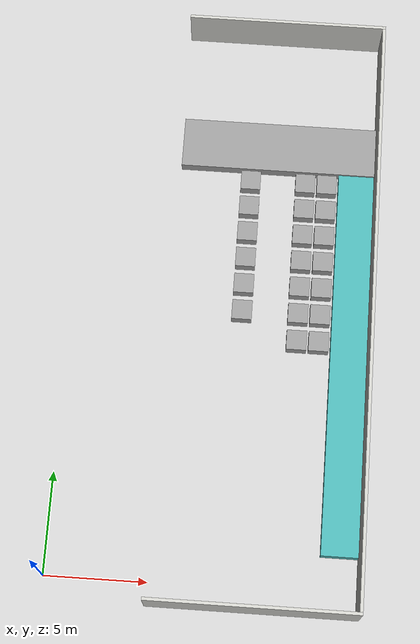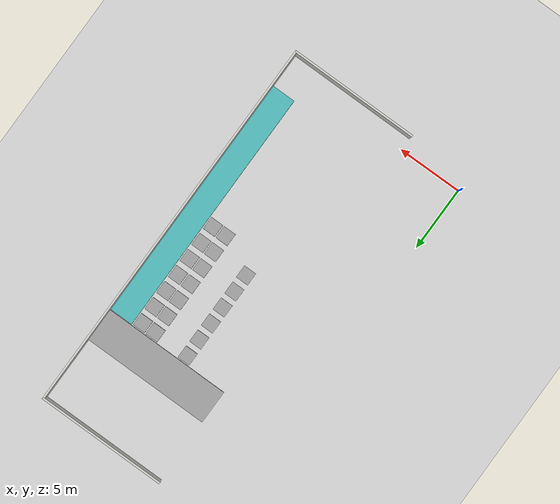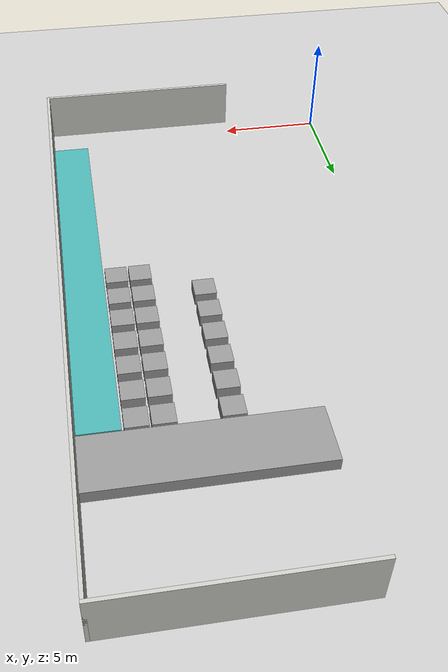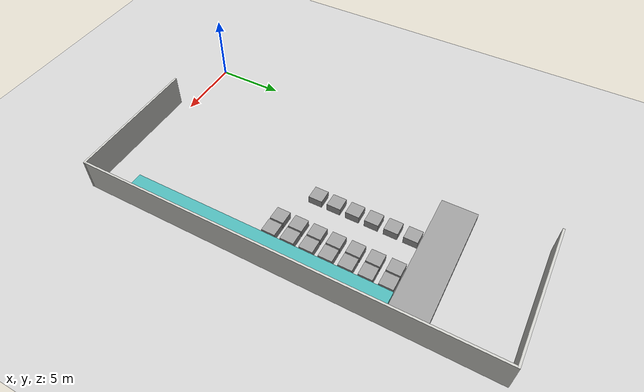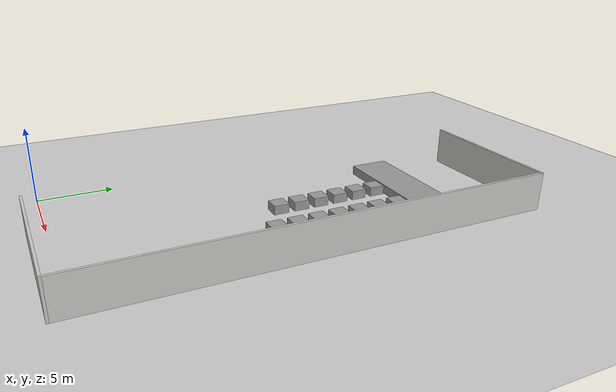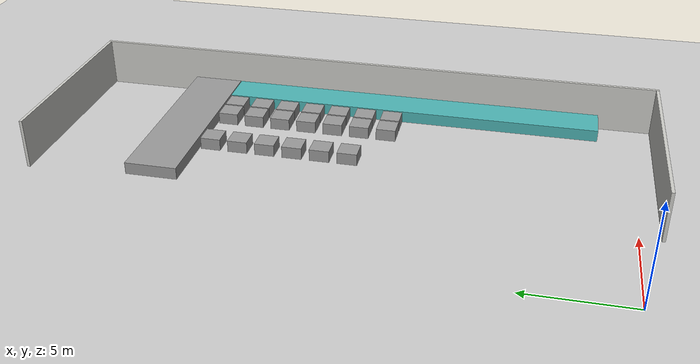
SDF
<sdf version="1.6">
 <world name="default">
  <model name="ground_plane">
   <static>1</static>
   <link name="link">
    <collision name="collision">
     <geometry><plane><normal>0 0 1</normal><size>100 100</size></plane></geometry>
     <surface>
      <contact><collide_bitmask>65535</collide_bitmask></contact>
      <friction><ode><mu>100</mu><mu2>50</mu2></ode></friction>
     </surface>
    </collision>
    <visual name="visual">
     <cast_shadows>0</cast_shadows>
     <geometry><plane><normal>0 0 1</normal><size>100 100</size></plane></geometry>
     <material>
      <script><uri>file://media/materials/scripts/gazebo.material</uri><name>Gazebo/Grey</name></script>
     </material>
    </visual>
   </link>
  </model>
  <model name="Estufa_2_0">
   <link name="Wall_1">
    <pose>0 15 0 0 -0 0</pose>
    <visual name="Wall_1_Visual">
     <pose>0 0 1.25 0 -0 0</pose>
     <geometry><box><size>10.15 0.15 2.5</size></box></geometry>
     <material>
      <script><uri>file://media/materials/scripts/gazebo.material</uri><name>Gazebo/CeilingTiled</name></script>
      <ambient>0.333333 0.341176 0.32549 1</ambient>
     </material>
     <meta><layer>0</layer></meta>
    </visual>
    <collision name="Wall_1_Collision">
     <pose>0 0 1.25 0 -0 0</pose>
     <geometry><box><size>10.15 0.15 2.5</size></box></geometry>
     <surface>
      <friction>
       <ode><mu>1</mu><mu2>1</mu2><fdir1>0 0 0</fdir1><slip1>0</slip1><slip2>0</slip2></ode>
       <torsional>
        <coefficient>1</coefficient>
        <patch_radius>0</patch_radius>
        <surface_radius>0</surface_radius>
        <use_patch_radius>1</use_patch_radius>
        <ode><slip>0</slip></ode>
       </torsional>
      </friction>
      <bounce><restitution_coefficient>0</restitution_coefficient><threshold>1e+06</threshold></bounce>
      <contact>
       <collide_without_contact>0</collide_without_contact>
       <collide_without_contact_bitmask>1</collide_without_contact_bitmask>
       <collide_bitmask>1</collide_bitmask>
       <ode>
        <soft_cfm>0</soft_cfm>
        <soft_erp>0.2</soft_erp>
        <kp>1e+13</kp>
        <kd>1</kd>
        <max_vel>0.01</max_vel>
        <min_depth>0</min_depth>
       </ode>
       <bullet>
        <split_impulse>1</split_impulse>
        <split_impulse_penetration_threshold>-0.01</split_impulse_penetration_threshold>
        <soft_cfm>0</soft_cfm>
        <soft_erp>0.2</soft_erp>
        <kp>1e+13</kp>
        <kd>1</kd>
       </bullet>
      </contact>
     </surface>
    </collision>
   </link>
   <link name="Wall_2">
    <pose>5 0 0 0 0 -1.5708</pose>
    <visual name="Wall_2_Visual">
     <pose>0 0 1.25 0 -0 0</pose>
     <geometry><box><size>30.15 0.15 2.5</size></box></geometry>
     <material>
      <script><uri>file://media/materials/scripts/gazebo.material</uri><name>Gazebo/CeilingTiled</name></script>
      <ambient>0.333333 0.341176 0.32549 1</ambient>
     </material>
     <meta><layer>0</layer></meta>
    </visual>
    <collision name="Wall_2_Collision">
     <pose>0 0 1.25 0 -0 0</pose>
     <geometry><box><size>30.15 0.15 2.5</size></box></geometry>
     <surface>
      <friction>
       <ode><mu>1</mu><mu2>1</mu2><fdir1>0 0 0</fdir1><slip1>0</slip1><slip2>0</slip2></ode>
       <torsional>
        <coefficient>1</coefficient>
        <patch_radius>0</patch_radius>
        <surface_radius>0</surface_radius>
        <use_patch_radius>1</use_patch_radius>
        <ode><slip>0</slip></ode>
       </torsional>
      </friction>
      <bounce><restitution_coefficient>0</restitution_coefficient><threshold>1e+06</threshold></bounce>
      <contact>
       <collide_without_contact>0</collide_without_contact>
       <collide_without_contact_bitmask>1</collide_without_contact_bitmask>
       <collide_bitmask>1</collide_bitmask>
       <ode>
        <soft_cfm>0</soft_cfm>
        <soft_erp>0.2</soft_erp>
        <kp>1e+13</kp>
        <kd>1</kd>
        <max_vel>0.01</max_vel>
        <min_depth>0</min_depth>
       </ode>
       <bullet>
        <split_impulse>1</split_impulse>
        <split_impulse_penetration_threshold>-0.01</split_impulse_penetration_threshold>
        <soft_cfm>0</soft_cfm>
        <soft_erp>0.2</soft_erp>
        <kp>1e+13</kp>
        <kd>1</kd>
       </bullet>
      </contact>
     </surface>
    </collision>
   </link>
   <link name="Wall_3">
    <pose>0 -15 0 0 -0 3.14159</pose>
    <visual name="Wall_3_Visual">
     <pose>0 0 1.25 0 -0 0</pose>
     <geometry><box><size>10.15 0.15 2.5</size></box></geometry>
     <material>
      <script><uri>file://media/materials/scripts/gazebo.material</uri><name>Gazebo/CeilingTiled</name></script>
      <ambient>0.333333 0.341176 0.32549 1</ambient>
     </material>
     <meta><layer>0</layer></meta>
    </visual>
    <collision name="Wall_3_Collision">
     <pose>0 0 1.25 0 -0 0</pose>
     <geometry><box><size>10.15 0.15 2.5</size></box></geometry>
     <surface>
      <friction>
       <ode><mu>1</mu><mu2>1</mu2><fdir1>0 0 0</fdir1><slip1>0</slip1><slip2>0</slip2></ode>
       <torsional>
        <coefficient>1</coefficient>
        <patch_radius>0</patch_radius>
        <surface_radius>0</surface_radius>
        <use_patch_radius>1</use_patch_radius>
        <ode><slip>0</slip></ode>
       </torsional>
      </friction>
      <bounce><restitution_coefficient>0</restitution_coefficient><threshold>1e+06</threshold></bounce>
      <contact>
       <collide_without_contact>0</collide_without_contact>
       <collide_without_contact_bitmask>1</collide_without_contact_bitmask>
       <collide_bitmask>1</collide_bitmask>
       <ode>
        <soft_cfm>0</soft_cfm>
        <soft_erp>0.2</soft_erp>
        <kp>1e+13</kp>
        <kd>1</kd>
        <max_vel>0.01</max_vel>
        <min_depth>0</min_depth>
       </ode>
       <bullet>
        <split_impulse>1</split_impulse>
        <split_impulse_penetration_threshold>-0.01</split_impulse_penetration_threshold>
        <soft_cfm>0</soft_cfm>
        <soft_erp>0.2</soft_erp>
        <kp>1e+13</kp>
        <kd>1</kd>
       </bullet>
      </contact>
     </surface>
    </collision>
   </link>
   <static>1</static>
   <pose>9.99599 13.9637 0 0 -0 0</pose>
  </model>
  <model name="Estufa-objetos_0">
   <link name="link_0_clone_3_clone_clone">
    <inertial>
     <mass>1</mass>
     <inertia>
      <ixx>0.166667</ixx>
      <ixy>0</ixy>
      <ixz>0</ixz>
      <iyy>0.166667</iyy>
      <iyz>0</iyz>
      <izz>0.166667</izz>
     </inertia>
    </inertial>
    <pose>4 6.5 0.5 0 -0 0</pose>
    <visual name="visual">
     <geometry><box><size>1.8 19.5 0.6</size></box></geometry>
     <material>
      <lighting>1</lighting>
      <script><uri>file://media/materials/scripts/gazebo.material</uri><name>Gazebo/Grey</name></script>
      <shader type="vertex"><normal_map>__default__</normal_map></shader>
      <ambient>0.3 0.7 0.7 1</ambient>
      <diffuse>0.7 0.7 0.7 1</diffuse>
      <specular>0.01 0.01 0.01 1</specular>
      <emissive>0 0 0 1</emissive>
     </material>
    </visual>
    <collision name="collision">
     <geometry><box><size>1.8 19.5 0.6</size></box></geometry>
     <surface>
      <friction>
       <ode><mu>1</mu><mu2>1</mu2><fdir1>0 0 0</fdir1><slip1>0</slip1><slip2>0</slip2></ode>
       <torsional>
        <coefficient>1</coefficient>
        <patch_radius>0</patch_radius>
        <surface_radius>0</surface_radius>
        <use_patch_radius>1</use_patch_radius>
        <ode><slip>0</slip></ode>
       </torsional>
      </friction>
      <bounce><restitution_coefficient>0</restitution_coefficient><threshold>1e+06</threshold></bounce>
      <contact>
       <collide_without_contact>0</collide_without_contact>
       <collide_without_contact_bitmask>1</collide_without_contact_bitmask>
       <collide_bitmask>1</collide_bitmask>
       <ode>
        <soft_cfm>0</soft_cfm>
        <soft_erp>0.2</soft_erp>
        <kp>1e+13</kp>
        <kd>1</kd>
        <max_vel>0.01</max_vel>
        <min_depth>0</min_depth>
       </ode>
       <bullet>
        <split_impulse>1</split_impulse>
        <split_impulse_penetration_threshold>-0.01</split_impulse_penetration_threshold>
        <soft_cfm>0</soft_cfm>
        <soft_erp>0.2</soft_erp>
        <kp>1e+13</kp>
        <kd>1</kd>
       </bullet>
      </contact>
     </surface>
    </collision>
   </link>
   <link name="link_0_clone_clone_24">
    <inertial>
     <mass>1</mass>
     <inertia>
      <ixx>0.166667</ixx>
      <ixy>0</ixy>
      <ixz>0</ixz>
      <iyy>0.166667</iyy>
      <iyz>0</iyz>
      <izz>0.166667</izz>
     </inertia>
    </inertial>
    <pose>2.5 7.3 0.5 0 -0 0</pose>
    <visual name="visual">
     <geometry><box><size>1 1 0.6</size></box></geometry>
     <material>
      <lighting>1</lighting>
      <script><uri>file://media/materials/scripts/gazebo.material</uri><name>Gazebo/Grey</name></script>
      <shader type="vertex"><normal_map>__default__</normal_map></shader>
      <ambient>0.3 0.3 0.3 1</ambient>
      <diffuse>0.7 0.7 0.7 1</diffuse>
      <specular>0.01 0.01 0.01 1</specular>
      <emissive>0 0 0 1</emissive>
     </material>
    </visual>
    <collision name="collision">
     <geometry><box><size>1 1 0.6</size></box></geometry>
     <surface>
      <friction>
       <ode><mu>1</mu><mu2>1</mu2><fdir1>0 0 0</fdir1><slip1>0</slip1><slip2>0</slip2></ode>
       <torsional>
        <coefficient>1</coefficient>
        <patch_radius>0</patch_radius>
        <surface_radius>0</surface_radius>
        <use_patch_radius>1</use_patch_radius>
        <ode><slip>0</slip></ode>
       </torsional>
      </friction>
      <bounce><restitution_coefficient>0</restitution_coefficient><threshold>1e+06</threshold></bounce>
      <contact>
       <collide_without_contact>0</collide_without_contact>
       <collide_without_contact_bitmask>1</collide_without_contact_bitmask>
       <collide_bitmask>1</collide_bitmask>
       <ode>
        <soft_cfm>0</soft_cfm>
        <soft_erp>0.2</soft_erp>
        <kp>1e+13</kp>
        <kd>1</kd>
        <max_vel>0.01</max_vel>
        <min_depth>0</min_depth>
       </ode>
       <bullet>
        <split_impulse>1</split_impulse>
        <split_impulse_penetration_threshold>-0.01</split_impulse_penetration_threshold>
        <soft_cfm>0</soft_cfm>
        <soft_erp>0.2</soft_erp>
        <kp>1e+13</kp>
        <kd>1</kd>
       </bullet>
      </contact>
     </surface>
    </collision>
   </link>
   <link name="link_0_clone_clone_25">
    <inertial>
     <mass>1</mass>
     <inertia>
      <ixx>0.166667</ixx>
      <ixy>0</ixy>
      <ixz>0</ixz>
      <iyy>0.166667</iyy>
      <iyz>0</iyz>
      <izz>0.166667</izz>
     </inertia>
    </inertial>
    <pose>1.4 7.3 0.5 0 -0 0</pose>
    <visual name="visual">
     <geometry><box><size>1 1 0.6</size></box></geometry>
     <material>
      <lighting>1</lighting>
      <script><uri>file://media/materials/scripts/gazebo.material</uri><name>Gazebo/Grey</name></script>
      <shader type="vertex"><normal_map>__default__</normal_map></shader>
      <ambient>0.3 0.3 0.3 1</ambient>
      <diffuse>0.7 0.7 0.7 1</diffuse>
      <specular>0.01 0.01 0.01 1</specular>
      <emissive>0 0 0 1</emissive>
     </material>
    </visual>
    <collision name="collision">
     <geometry><box><size>1 1 0.6</size></box></geometry>
     <surface>
      <friction>
       <ode><mu>1</mu><mu2>1</mu2><fdir1>0 0 0</fdir1><slip1>0</slip1><slip2>0</slip2></ode>
       <torsional>
        <coefficient>1</coefficient>
        <patch_radius>0</patch_radius>
        <surface_radius>0</surface_radius>
        <use_patch_radius>1</use_patch_radius>
        <ode><slip>0</slip></ode>
       </torsional>
      </friction>
      <bounce><restitution_coefficient>0</restitution_coefficient><threshold>1e+06</threshold></bounce>
      <contact>
       <collide_without_contact>0</collide_without_contact>
       <collide_without_contact_bitmask>1</collide_without_contact_bitmask>
       <collide_bitmask>1</collide_bitmask>
       <ode>
        <soft_cfm>0</soft_cfm>
        <soft_erp>0.2</soft_erp>
        <kp>1e+13</kp>
        <kd>1</kd>
        <max_vel>0.01</max_vel>
        <min_depth>0</min_depth>
       </ode>
       <bullet>
        <split_impulse>1</split_impulse>
        <split_impulse_penetration_threshold>-0.01</split_impulse_penetration_threshold>
        <soft_cfm>0</soft_cfm>
        <soft_erp>0.2</soft_erp>
        <kp>1e+13</kp>
        <kd>1</kd>
       </bullet>
      </contact>
     </surface>
    </collision>
   </link>
   <link name="link_0_clone_clone_28">
    <inertial>
     <mass>1</mass>
     <inertia>
      <ixx>0.166667</ixx>
      <ixy>0</ixy>
      <ixz>0</ixz>
      <iyy>0.166667</iyy>
      <iyz>0</iyz>
      <izz>0.166667</izz>
     </inertia>
    </inertial>
    <pose>2.5 8.7 0.5 0 -0 0</pose>
    <visual name="visual">
     <geometry><box><size>1 1 0.6</size></box></geometry>
     <material>
      <lighting>1</lighting>
      <script><uri>file://media/materials/scripts/gazebo.material</uri><name>Gazebo/Grey</name></script>
      <shader type="vertex"><normal_map>__default__</normal_map></shader>
      <ambient>0.3 0.3 0.3 1</ambient>
      <diffuse>0.7 0.7 0.7 1</diffuse>
      <specular>0.01 0.01 0.01 1</specular>
      <emissive>0 0 0 1</emissive>
     </material>
    </visual>
    <collision name="collision">
     <geometry><box><size>1 1 0.6</size></box></geometry>
     <surface>
      <friction>
       <ode><mu>1</mu><mu2>1</mu2><fdir1>0 0 0</fdir1><slip1>0</slip1><slip2>0</slip2></ode>
       <torsional>
        <coefficient>1</coefficient>
        <patch_radius>0</patch_radius>
        <surface_radius>0</surface_radius>
        <use_patch_radius>1</use_patch_radius>
        <ode><slip>0</slip></ode>
       </torsional>
      </friction>
      <bounce><restitution_coefficient>0</restitution_coefficient><threshold>1e+06</threshold></bounce>
      <contact>
       <collide_without_contact>0</collide_without_contact>
       <collide_without_contact_bitmask>1</collide_without_contact_bitmask>
       <collide_bitmask>1</collide_bitmask>
       <ode>
        <soft_cfm>0</soft_cfm>
        <soft_erp>0.2</soft_erp>
        <kp>1e+13</kp>
        <kd>1</kd>
        <max_vel>0.01</max_vel>
        <min_depth>0</min_depth>
       </ode>
       <bullet>
        <split_impulse>1</split_impulse>
        <split_impulse_penetration_threshold>-0.01</split_impulse_penetration_threshold>
        <soft_cfm>0</soft_cfm>
        <soft_erp>0.2</soft_erp>
        <kp>1e+13</kp>
        <kd>1</kd>
       </bullet>
      </contact>
     </surface>
    </collision>
   </link>
   <link name="link_0_clone_clone_29">
    <inertial>
     <mass>1</mass>
     <inertia>
      <ixx>0.166667</ixx>
      <ixy>0</ixy>
      <ixz>0</ixz>
      <iyy>0.166667</iyy>
      <iyz>0</iyz>
      <izz>0.166667</izz>
     </inertia>
    </inertial>
    <pose>1.4 8.7 0.5 0 -0 0</pose>
    <visual name="visual">
     <geometry><box><size>1 1 0.6</size></box></geometry>
     <material>
      <lighting>1</lighting>
      <script><uri>file://media/materials/scripts/gazebo.material</uri><name>Gazebo/Grey</name></script>
      <shader type="vertex"><normal_map>__default__</normal_map></shader>
      <ambient>0.3 0.3 0.3 1</ambient>
      <diffuse>0.7 0.7 0.7 1</diffuse>
      <specular>0.01 0.01 0.01 1</specular>
      <emissive>0 0 0 1</emissive>
     </material>
    </visual>
    <collision name="collision">
     <geometry><box><size>1 1 0.6</size></box></geometry>
     <surface>
      <friction>
       <ode><mu>1</mu><mu2>1</mu2><fdir1>0 0 0</fdir1><slip1>0</slip1><slip2>0</slip2></ode>
       <torsional>
        <coefficient>1</coefficient>
        <patch_radius>0</patch_radius>
        <surface_radius>0</surface_radius>
        <use_patch_radius>1</use_patch_radius>
        <ode><slip>0</slip></ode>
       </torsional>
      </friction>
      <bounce><restitution_coefficient>0</restitution_coefficient><threshold>1e+06</threshold></bounce>
      <contact>
       <collide_without_contact>0</collide_without_contact>
       <collide_without_contact_bitmask>1</collide_without_contact_bitmask>
       <collide_bitmask>1</collide_bitmask>
       <ode>
        <soft_cfm>0</soft_cfm>
        <soft_erp>0.2</soft_erp>
        <kp>1e+13</kp>
        <kd>1</kd>
        <max_vel>0.01</max_vel>
        <min_depth>0</min_depth>
       </ode>
       <bullet>
        <split_impulse>1</split_impulse>
        <split_impulse_penetration_threshold>-0.01</split_impulse_penetration_threshold>
        <soft_cfm>0</soft_cfm>
        <soft_erp>0.2</soft_erp>
        <kp>1e+13</kp>
        <kd>1</kd>
       </bullet>
      </contact>
     </surface>
    </collision>
   </link>
   <link name="link_0_clone_clone_30">
    <inertial>
     <mass>1</mass>
     <inertia>
      <ixx>0.166667</ixx>
      <ixy>0</ixy>
      <ixz>0</ixz>
      <iyy>0.166667</iyy>
      <iyz>0</iyz>
      <izz>0.166667</izz>
     </inertia>
    </inertial>
    <pose>-1.4 8.7 0.5 0 -0 0</pose>
    <visual name="visual">
     <geometry><box><size>1 1 0.6</size></box></geometry>
     <material>
      <lighting>1</lighting>
      <script><uri>file://media/materials/scripts/gazebo.material</uri><name>Gazebo/Grey</name></script>
      <shader type="vertex"><normal_map>__default__</normal_map></shader>
      <ambient>0.3 0.3 0.3 1</ambient>
      <diffuse>0.7 0.7 0.7 1</diffuse>
      <specular>0.01 0.01 0.01 1</specular>
      <emissive>0 0 0 1</emissive>
     </material>
    </visual>
    <collision name="collision">
     <geometry><box><size>1 1 0.6</size></box></geometry>
     <surface>
      <friction>
       <ode><mu>1</mu><mu2>1</mu2><fdir1>0 0 0</fdir1><slip1>0</slip1><slip2>0</slip2></ode>
       <torsional>
        <coefficient>1</coefficient>
        <patch_radius>0</patch_radius>
        <surface_radius>0</surface_radius>
        <use_patch_radius>1</use_patch_radius>
        <ode><slip>0</slip></ode>
       </torsional>
      </friction>
      <bounce><restitution_coefficient>0</restitution_coefficient><threshold>1e+06</threshold></bounce>
      <contact>
       <collide_without_contact>0</collide_without_contact>
       <collide_without_contact_bitmask>1</collide_without_contact_bitmask>
       <collide_bitmask>1</collide_bitmask>
       <ode>
        <soft_cfm>0</soft_cfm>
        <soft_erp>0.2</soft_erp>
        <kp>1e+13</kp>
        <kd>1</kd>
        <max_vel>0.01</max_vel>
        <min_depth>0</min_depth>
       </ode>
       <bullet>
        <split_impulse>1</split_impulse>
        <split_impulse_penetration_threshold>-0.01</split_impulse_penetration_threshold>
        <soft_cfm>0</soft_cfm>
        <soft_erp>0.2</soft_erp>
        <kp>1e+13</kp>
        <kd>1</kd>
       </bullet>
      </contact>
     </surface>
    </collision>
   </link>
   <link name="link_0_clone_clone_32">
    <inertial>
     <mass>1</mass>
     <inertia>
      <ixx>0.166667</ixx>
      <ixy>0</ixy>
      <ixz>0</ixz>
      <iyy>0.166667</iyy>
      <iyz>0</iyz>
      <izz>0.166667</izz>
     </inertia>
    </inertial>
    <pose>2.5 10.1 0.5 0 -0 0</pose>
    <visual name="visual">
     <geometry><box><size>1 1 0.6</size></box></geometry>
     <material>
      <lighting>1</lighting>
      <script><uri>file://media/materials/scripts/gazebo.material</uri><name>Gazebo/Grey</name></script>
      <shader type="vertex"><normal_map>__default__</normal_map></shader>
      <ambient>0.3 0.3 0.3 1</ambient>
      <diffuse>0.7 0.7 0.7 1</diffuse>
      <specular>0.01 0.01 0.01 1</specular>
      <emissive>0 0 0 1</emissive>
     </material>
    </visual>
    <collision name="collision">
     <geometry><box><size>1 1 0.6</size></box></geometry>
     <surface>
      <friction>
       <ode><mu>1</mu><mu2>1</mu2><fdir1>0 0 0</fdir1><slip1>0</slip1><slip2>0</slip2></ode>
       <torsional>
        <coefficient>1</coefficient>
        <patch_radius>0</patch_radius>
        <surface_radius>0</surface_radius>
        <use_patch_radius>1</use_patch_radius>
        <ode><slip>0</slip></ode>
       </torsional>
      </friction>
      <bounce><restitution_coefficient>0</restitution_coefficient><threshold>1e+06</threshold></bounce>
      <contact>
       <collide_without_contact>0</collide_without_contact>
       <collide_without_contact_bitmask>1</collide_without_contact_bitmask>
       <collide_bitmask>1</collide_bitmask>
       <ode>
        <soft_cfm>0</soft_cfm>
        <soft_erp>0.2</soft_erp>
        <kp>1e+13</kp>
        <kd>1</kd>
        <max_vel>0.01</max_vel>
        <min_depth>0</min_depth>
       </ode>
       <bullet>
        <split_impulse>1</split_impulse>
        <split_impulse_penetration_threshold>-0.01</split_impulse_penetration_threshold>
        <soft_cfm>0</soft_cfm>
        <soft_erp>0.2</soft_erp>
        <kp>1e+13</kp>
        <kd>1</kd>
       </bullet>
      </contact>
     </surface>
    </collision>
   </link>
   <link name="link_0_clone_clone_33">
    <inertial>
     <mass>1</mass>
     <inertia>
      <ixx>0.166667</ixx>
      <ixy>0</ixy>
      <ixz>0</ixz>
      <iyy>0.166667</iyy>
      <iyz>0</iyz>
      <izz>0.166667</izz>
     </inertia>
    </inertial>
    <pose>1.4 10.1 0.5 0 -0 0</pose>
    <visual name="visual">
     <geometry><box><size>1 1 0.6</size></box></geometry>
     <material>
      <lighting>1</lighting>
      <script><uri>file://media/materials/scripts/gazebo.material</uri><name>Gazebo/Grey</name></script>
      <shader type="vertex"><normal_map>__default__</normal_map></shader>
      <ambient>0.3 0.3 0.3 1</ambient>
      <diffuse>0.7 0.7 0.7 1</diffuse>
      <specular>0.01 0.01 0.01 1</specular>
      <emissive>0 0 0 1</emissive>
     </material>
    </visual>
    <collision name="collision">
     <geometry><box><size>1 1 0.6</size></box></geometry>
     <surface>
      <friction>
       <ode><mu>1</mu><mu2>1</mu2><fdir1>0 0 0</fdir1><slip1>0</slip1><slip2>0</slip2></ode>
       <torsional>
        <coefficient>1</coefficient>
        <patch_radius>0</patch_radius>
        <surface_radius>0</surface_radius>
        <use_patch_radius>1</use_patch_radius>
        <ode><slip>0</slip></ode>
       </torsional>
      </friction>
      <bounce><restitution_coefficient>0</restitution_coefficient><threshold>1e+06</threshold></bounce>
      <contact>
       <collide_without_contact>0</collide_without_contact>
       <collide_without_contact_bitmask>1</collide_without_contact_bitmask>
       <collide_bitmask>1</collide_bitmask>
       <ode>
        <soft_cfm>0</soft_cfm>
        <soft_erp>0.2</soft_erp>
        <kp>1e+13</kp>
        <kd>1</kd>
        <max_vel>0.01</max_vel>
        <min_depth>0</min_depth>
       </ode>
       <bullet>
        <split_impulse>1</split_impulse>
        <split_impulse_penetration_threshold>-0.01</split_impulse_penetration_threshold>
        <soft_cfm>0</soft_cfm>
        <soft_erp>0.2</soft_erp>
        <kp>1e+13</kp>
        <kd>1</kd>
       </bullet>
      </contact>
     </surface>
    </collision>
   </link>
   <link name="link_0_clone_clone_34">
    <inertial>
     <mass>1</mass>
     <inertia>
      <ixx>0.166667</ixx>
      <ixy>0</ixy>
      <ixz>0</ixz>
      <iyy>0.166667</iyy>
      <iyz>0</iyz>
      <izz>0.166667</izz>
     </inertia>
    </inertial>
    <pose>-1.4 10.1 0.5 0 -0 0</pose>
    <visual name="visual">
     <geometry><box><size>1 1 0.6</size></box></geometry>
     <material>
      <lighting>1</lighting>
      <script><uri>file://media/materials/scripts/gazebo.material</uri><name>Gazebo/Grey</name></script>
      <shader type="vertex"><normal_map>__default__</normal_map></shader>
      <ambient>0.3 0.3 0.3 1</ambient>
      <diffuse>0.7 0.7 0.7 1</diffuse>
      <specular>0.01 0.01 0.01 1</specular>
      <emissive>0 0 0 1</emissive>
     </material>
    </visual>
    <collision name="collision">
     <geometry><box><size>1 1 0.6</size></box></geometry>
     <surface>
      <friction>
       <ode><mu>1</mu><mu2>1</mu2><fdir1>0 0 0</fdir1><slip1>0</slip1><slip2>0</slip2></ode>
       <torsional>
        <coefficient>1</coefficient>
        <patch_radius>0</patch_radius>
        <surface_radius>0</surface_radius>
        <use_patch_radius>1</use_patch_radius>
        <ode><slip>0</slip></ode>
       </torsional>
      </friction>
      <bounce><restitution_coefficient>0</restitution_coefficient><threshold>1e+06</threshold></bounce>
      <contact>
       <collide_without_contact>0</collide_without_contact>
       <collide_without_contact_bitmask>1</collide_without_contact_bitmask>
       <collide_bitmask>1</collide_bitmask>
       <ode>
        <soft_cfm>0</soft_cfm>
        <soft_erp>0.2</soft_erp>
        <kp>1e+13</kp>
        <kd>1</kd>
        <max_vel>0.01</max_vel>
        <min_depth>0</min_depth>
       </ode>
       <bullet>
        <split_impulse>1</split_impulse>
        <split_impulse_penetration_threshold>-0.01</split_impulse_penetration_threshold>
        <soft_cfm>0</soft_cfm>
        <soft_erp>0.2</soft_erp>
        <kp>1e+13</kp>
        <kd>1</kd>
       </bullet>
      </contact>
     </surface>
    </collision>
   </link>
   <link name="link_0_clone_clone_36">
    <inertial>
     <mass>1</mass>
     <inertia>
      <ixx>0.166667</ixx>
      <ixy>0</ixy>
      <ixz>0</ixz>
      <iyy>0.166667</iyy>
      <iyz>0</iyz>
      <izz>0.166667</izz>
     </inertia>
    </inertial>
    <pose>2.5 11.5 0.5 0 -0 0</pose>
    <visual name="visual">
     <geometry><box><size>1 1 0.6</size></box></geometry>
     <material>
      <lighting>1</lighting>
      <script><uri>file://media/materials/scripts/gazebo.material</uri><name>Gazebo/Grey</name></script>
      <shader type="vertex"><normal_map>__default__</normal_map></shader>
      <ambient>0.3 0.3 0.3 1</ambient>
      <diffuse>0.7 0.7 0.7 1</diffuse>
      <specular>0.01 0.01 0.01 1</specular>
      <emissive>0 0 0 1</emissive>
     </material>
    </visual>
    <collision name="collision">
     <geometry><box><size>1 1 0.6</size></box></geometry>
     <surface>
      <friction>
       <ode><mu>1</mu><mu2>1</mu2><fdir1>0 0 0</fdir1><slip1>0</slip1><slip2>0</slip2></ode>
       <torsional>
        <coefficient>1</coefficient>
        <patch_radius>0</patch_radius>
        <surface_radius>0</surface_radius>
        <use_patch_radius>1</use_patch_radius>
        <ode><slip>0</slip></ode>
       </torsional>
      </friction>
      <bounce><restitution_coefficient>0</restitution_coefficient><threshold>1e+06</threshold></bounce>
      <contact>
       <collide_without_contact>0</collide_without_contact>
       <collide_without_contact_bitmask>1</collide_without_contact_bitmask>
       <collide_bitmask>1</collide_bitmask>
       <ode>
        <soft_cfm>0</soft_cfm>
        <soft_erp>0.2</soft_erp>
        <kp>1e+13</kp>
        <kd>1</kd>
        <max_vel>0.01</max_vel>
        <min_depth>0</min_depth>
       </ode>
       <bullet>
        <split_impulse>1</split_impulse>
        <split_impulse_penetration_threshold>-0.01</split_impulse_penetration_threshold>
        <soft_cfm>0</soft_cfm>
        <soft_erp>0.2</soft_erp>
        <kp>1e+13</kp>
        <kd>1</kd>
       </bullet>
      </contact>
     </surface>
    </collision>
   </link>
   <link name="link_0_clone_clone_37">
    <inertial>
     <mass>1</mass>
     <inertia>
      <ixx>0.166667</ixx>
      <ixy>0</ixy>
      <ixz>0</ixz>
      <iyy>0.166667</iyy>
      <iyz>0</iyz>
      <izz>0.166667</izz>
     </inertia>
    </inertial>
    <pose>1.4 11.5 0.5 0 -0 0</pose>
    <visual name="visual">
     <geometry><box><size>1 1 0.6</size></box></geometry>
     <material>
      <lighting>1</lighting>
      <script><uri>file://media/materials/scripts/gazebo.material</uri><name>Gazebo/Grey</name></script>
      <shader type="vertex"><normal_map>__default__</normal_map></shader>
      <ambient>0.3 0.3 0.3 1</ambient>
      <diffuse>0.7 0.7 0.7 1</diffuse>
      <specular>0.01 0.01 0.01 1</specular>
      <emissive>0 0 0 1</emissive>
     </material>
    </visual>
    <collision name="collision">
     <geometry><box><size>1 1 0.6</size></box></geometry>
     <surface>
      <friction>
       <ode><mu>1</mu><mu2>1</mu2><fdir1>0 0 0</fdir1><slip1>0</slip1><slip2>0</slip2></ode>
       <torsional>
        <coefficient>1</coefficient>
        <patch_radius>0</patch_radius>
        <surface_radius>0</surface_radius>
        <use_patch_radius>1</use_patch_radius>
        <ode><slip>0</slip></ode>
       </torsional>
      </friction>
      <bounce><restitution_coefficient>0</restitution_coefficient><threshold>1e+06</threshold></bounce>
      <contact>
       <collide_without_contact>0</collide_without_contact>
       <collide_without_contact_bitmask>1</collide_without_contact_bitmask>
       <collide_bitmask>1</collide_bitmask>
       <ode>
        <soft_cfm>0</soft_cfm>
        <soft_erp>0.2</soft_erp>
        <kp>1e+13</kp>
        <kd>1</kd>
        <max_vel>0.01</max_vel>
        <min_depth>0</min_depth>
       </ode>
       <bullet>
        <split_impulse>1</split_impulse>
        <split_impulse_penetration_threshold>-0.01</split_impulse_penetration_threshold>
        <soft_cfm>0</soft_cfm>
        <soft_erp>0.2</soft_erp>
        <kp>1e+13</kp>
        <kd>1</kd>
       </bullet>
      </contact>
     </surface>
    </collision>
   </link>
   <link name="link_0_clone_clone_38">
    <inertial>
     <mass>1</mass>
     <inertia>
      <ixx>0.166667</ixx>
      <ixy>0</ixy>
      <ixz>0</ixz>
      <iyy>0.166667</iyy>
      <iyz>0</iyz>
      <izz>0.166667</izz>
     </inertia>
    </inertial>
    <pose>-1.4 11.5 0.5 0 -0 0</pose>
    <visual name="visual">
     <geometry><box><size>1 1 0.6</size></box></geometry>
     <material>
      <lighting>1</lighting>
      <script><uri>file://media/materials/scripts/gazebo.material</uri><name>Gazebo/Grey</name></script>
      <shader type="vertex"><normal_map>__default__</normal_map></shader>
      <ambient>0.3 0.3 0.3 1</ambient>
      <diffuse>0.7 0.7 0.7 1</diffuse>
      <specular>0.01 0.01 0.01 1</specular>
      <emissive>0 0 0 1</emissive>
     </material>
    </visual>
    <collision name="collision">
     <geometry><box><size>1 1 0.6</size></box></geometry>
     <surface>
      <friction>
       <ode><mu>1</mu><mu2>1</mu2><fdir1>0 0 0</fdir1><slip1>0</slip1><slip2>0</slip2></ode>
       <torsional>
        <coefficient>1</coefficient>
        <patch_radius>0</patch_radius>
        <surface_radius>0</surface_radius>
        <use_patch_radius>1</use_patch_radius>
        <ode><slip>0</slip></ode>
       </torsional>
      </friction>
      <bounce><restitution_coefficient>0</restitution_coefficient><threshold>1e+06</threshold></bounce>
      <contact>
       <collide_without_contact>0</collide_without_contact>
       <collide_without_contact_bitmask>1</collide_without_contact_bitmask>
       <collide_bitmask>1</collide_bitmask>
       <ode>
        <soft_cfm>0</soft_cfm>
        <soft_erp>0.2</soft_erp>
        <kp>1e+13</kp>
        <kd>1</kd>
        <max_vel>0.01</max_vel>
        <min_depth>0</min_depth>
       </ode>
       <bullet>
        <split_impulse>1</split_impulse>
        <split_impulse_penetration_threshold>-0.01</split_impulse_penetration_threshold>
        <soft_cfm>0</soft_cfm>
        <soft_erp>0.2</soft_erp>
        <kp>1e+13</kp>
        <kd>1</kd>
       </bullet>
      </contact>
     </surface>
    </collision>
   </link>
   <link name="link_0_clone_clone_40">
    <inertial>
     <mass>1</mass>
     <inertia>
      <ixx>0.166667</ixx>
      <ixy>0</ixy>
      <ixz>0</ixz>
      <iyy>0.166667</iyy>
      <iyz>0</iyz>
      <izz>0.166667</izz>
     </inertia>
    </inertial>
    <pose>2.5 12.9 0.5 0 -0 0</pose>
    <visual name="visual">
     <geometry><box><size>1 1 0.6</size></box></geometry>
     <material>
      <lighting>1</lighting>
      <script><uri>file://media/materials/scripts/gazebo.material</uri><name>Gazebo/Grey</name></script>
      <shader type="vertex"><normal_map>__default__</normal_map></shader>
      <ambient>0.3 0.3 0.3 1</ambient>
      <diffuse>0.7 0.7 0.7 1</diffuse>
      <specular>0.01 0.01 0.01 1</specular>
      <emissive>0 0 0 1</emissive>
     </material>
    </visual>
    <collision name="collision">
     <geometry><box><size>1 1 0.6</size></box></geometry>
     <surface>
      <friction>
       <ode><mu>1</mu><mu2>1</mu2><fdir1>0 0 0</fdir1><slip1>0</slip1><slip2>0</slip2></ode>
       <torsional>
        <coefficient>1</coefficient>
        <patch_radius>0</patch_radius>
        <surface_radius>0</surface_radius>
        <use_patch_radius>1</use_patch_radius>
        <ode><slip>0</slip></ode>
       </torsional>
      </friction>
      <bounce><restitution_coefficient>0</restitution_coefficient><threshold>1e+06</threshold></bounce>
      <contact>
       <collide_without_contact>0</collide_without_contact>
       <collide_without_contact_bitmask>1</collide_without_contact_bitmask>
       <collide_bitmask>1</collide_bitmask>
       <ode>
        <soft_cfm>0</soft_cfm>
        <soft_erp>0.2</soft_erp>
        <kp>1e+13</kp>
        <kd>1</kd>
        <max_vel>0.01</max_vel>
        <min_depth>0</min_depth>
       </ode>
       <bullet>
        <split_impulse>1</split_impulse>
        <split_impulse_penetration_threshold>-0.01</split_impulse_penetration_threshold>
        <soft_cfm>0</soft_cfm>
        <soft_erp>0.2</soft_erp>
        <kp>1e+13</kp>
        <kd>1</kd>
       </bullet>
      </contact>
     </surface>
    </collision>
   </link>
   <link name="link_0_clone_clone_41">
    <inertial>
     <mass>1</mass>
     <inertia>
      <ixx>0.166667</ixx>
      <ixy>0</ixy>
      <ixz>0</ixz>
      <iyy>0.166667</iyy>
      <iyz>0</iyz>
      <izz>0.166667</izz>
     </inertia>
    </inertial>
    <pose>2.5 14.3 0.5 0 -0 0</pose>
    <visual name="visual">
     <geometry><box><size>1 1 0.6</size></box></geometry>
     <material>
      <lighting>1</lighting>
      <script><uri>file://media/materials/scripts/gazebo.material</uri><name>Gazebo/Grey</name></script>
      <shader type="vertex"><normal_map>__default__</normal_map></shader>
      <ambient>0.3 0.3 0.3 1</ambient>
      <diffuse>0.7 0.7 0.7 1</diffuse>
      <specular>0.01 0.01 0.01 1</specular>
      <emissive>0 0 0 1</emissive>
     </material>
    </visual>
    <collision name="collision">
     <geometry><box><size>1 1 0.6</size></box></geometry>
     <surface>
      <friction>
       <ode><mu>1</mu><mu2>1</mu2><fdir1>0 0 0</fdir1><slip1>0</slip1><slip2>0</slip2></ode>
       <torsional>
        <coefficient>1</coefficient>
        <patch_radius>0</patch_radius>
        <surface_radius>0</surface_radius>
        <use_patch_radius>1</use_patch_radius>
        <ode><slip>0</slip></ode>
       </torsional>
      </friction>
      <bounce><restitution_coefficient>0</restitution_coefficient><threshold>1e+06</threshold></bounce>
      <contact>
       <collide_without_contact>0</collide_without_contact>
       <collide_without_contact_bitmask>1</collide_without_contact_bitmask>
       <collide_bitmask>1</collide_bitmask>
       <ode>
        <soft_cfm>0</soft_cfm>
        <soft_erp>0.2</soft_erp>
        <kp>1e+13</kp>
        <kd>1</kd>
        <max_vel>0.01</max_vel>
        <min_depth>0</min_depth>
       </ode>
       <bullet>
        <split_impulse>1</split_impulse>
        <split_impulse_penetration_threshold>-0.01</split_impulse_penetration_threshold>
        <soft_cfm>0</soft_cfm>
        <soft_erp>0.2</soft_erp>
        <kp>1e+13</kp>
        <kd>1</kd>
       </bullet>
      </contact>
     </surface>
    </collision>
   </link>
   <link name="link_0_clone_clone_42">
    <inertial>
     <mass>1</mass>
     <inertia>
      <ixx>0.166667</ixx>
      <ixy>0</ixy>
      <ixz>0</ixz>
      <iyy>0.166667</iyy>
      <iyz>0</iyz>
      <izz>0.166667</izz>
     </inertia>
    </inertial>
    <pose>2.5 15.7 0.5 0 -0 0</pose>
    <visual name="visual">
     <geometry><box><size>1 1 0.6</size></box></geometry>
     <material>
      <lighting>1</lighting>
      <script><uri>file://media/materials/scripts/gazebo.material</uri><name>Gazebo/Grey</name></script>
      <shader type="vertex"><normal_map>__default__</normal_map></shader>
      <ambient>0.3 0.3 0.3 1</ambient>
      <diffuse>0.7 0.7 0.7 1</diffuse>
      <specular>0.01 0.01 0.01 1</specular>
      <emissive>0 0 0 1</emissive>
     </material>
    </visual>
    <collision name="collision">
     <geometry><box><size>1 1 0.6</size></box></geometry>
     <surface>
      <friction>
       <ode><mu>1</mu><mu2>1</mu2><fdir1>0 0 0</fdir1><slip1>0</slip1><slip2>0</slip2></ode>
       <torsional>
        <coefficient>1</coefficient>
        <patch_radius>0</patch_radius>
        <surface_radius>0</surface_radius>
        <use_patch_radius>1</use_patch_radius>
        <ode><slip>0</slip></ode>
       </torsional>
      </friction>
      <bounce><restitution_coefficient>0</restitution_coefficient><threshold>1e+06</threshold></bounce>
      <contact>
       <collide_without_contact>0</collide_without_contact>
       <collide_without_contact_bitmask>1</collide_without_contact_bitmask>
       <collide_bitmask>1</collide_bitmask>
       <ode>
        <soft_cfm>0</soft_cfm>
        <soft_erp>0.2</soft_erp>
        <kp>1e+13</kp>
        <kd>1</kd>
        <max_vel>0.01</max_vel>
        <min_depth>0</min_depth>
       </ode>
       <bullet>
        <split_impulse>1</split_impulse>
        <split_impulse_penetration_threshold>-0.01</split_impulse_penetration_threshold>
        <soft_cfm>0</soft_cfm>
        <soft_erp>0.2</soft_erp>
        <kp>1e+13</kp>
        <kd>1</kd>
       </bullet>
      </contact>
     </surface>
    </collision>
   </link>
   <link name="link_0_clone_clone_43">
    <inertial>
     <mass>1</mass>
     <inertia>
      <ixx>0.166667</ixx>
      <ixy>0</ixy>
      <ixz>0</ixz>
      <iyy>0.166667</iyy>
      <iyz>0</iyz>
      <izz>0.166667</izz>
     </inertia>
    </inertial>
    <pose>1.4 12.9 0.5 0 -0 0</pose>
    <visual name="visual">
     <geometry><box><size>1 1 0.6</size></box></geometry>
     <material>
      <lighting>1</lighting>
      <script><uri>file://media/materials/scripts/gazebo.material</uri><name>Gazebo/Grey</name></script>
      <shader type="vertex"><normal_map>__default__</normal_map></shader>
      <ambient>0.3 0.3 0.3 1</ambient>
      <diffuse>0.7 0.7 0.7 1</diffuse>
      <specular>0.01 0.01 0.01 1</specular>
      <emissive>0 0 0 1</emissive>
     </material>
    </visual>
    <collision name="collision">
     <geometry><box><size>1 1 0.6</size></box></geometry>
     <surface>
      <friction>
       <ode><mu>1</mu><mu2>1</mu2><fdir1>0 0 0</fdir1><slip1>0</slip1><slip2>0</slip2></ode>
       <torsional>
        <coefficient>1</coefficient>
        <patch_radius>0</patch_radius>
        <surface_radius>0</surface_radius>
        <use_patch_radius>1</use_patch_radius>
        <ode><slip>0</slip></ode>
       </torsional>
      </friction>
      <bounce><restitution_coefficient>0</restitution_coefficient><threshold>1e+06</threshold></bounce>
      <contact>
       <collide_without_contact>0</collide_without_contact>
       <collide_without_contact_bitmask>1</collide_without_contact_bitmask>
       <collide_bitmask>1</collide_bitmask>
       <ode>
        <soft_cfm>0</soft_cfm>
        <soft_erp>0.2</soft_erp>
        <kp>1e+13</kp>
        <kd>1</kd>
        <max_vel>0.01</max_vel>
        <min_depth>0</min_depth>
       </ode>
       <bullet>
        <split_impulse>1</split_impulse>
        <split_impulse_penetration_threshold>-0.01</split_impulse_penetration_threshold>
        <soft_cfm>0</soft_cfm>
        <soft_erp>0.2</soft_erp>
        <kp>1e+13</kp>
        <kd>1</kd>
       </bullet>
      </contact>
     </surface>
    </collision>
   </link>
   <link name="link_0_clone_clone_44">
    <inertial>
     <mass>1</mass>
     <inertia>
      <ixx>0.166667</ixx>
      <ixy>0</ixy>
      <ixz>0</ixz>
      <iyy>0.166667</iyy>
      <iyz>0</iyz>
      <izz>0.166667</izz>
     </inertia>
    </inertial>
    <pose>1.4 14.3 0.5 0 -0 0</pose>
    <visual name="visual">
     <geometry><box><size>1 1 0.6</size></box></geometry>
     <material>
      <lighting>1</lighting>
      <script><uri>file://media/materials/scripts/gazebo.material</uri><name>Gazebo/Grey</name></script>
      <shader type="vertex"><normal_map>__default__</normal_map></shader>
      <ambient>0.3 0.3 0.3 1</ambient>
      <diffuse>0.7 0.7 0.7 1</diffuse>
      <specular>0.01 0.01 0.01 1</specular>
      <emissive>0 0 0 1</emissive>
     </material>
    </visual>
    <collision name="collision">
     <geometry><box><size>1 1 0.6</size></box></geometry>
     <surface>
      <friction>
       <ode><mu>1</mu><mu2>1</mu2><fdir1>0 0 0</fdir1><slip1>0</slip1><slip2>0</slip2></ode>
       <torsional>
        <coefficient>1</coefficient>
        <patch_radius>0</patch_radius>
        <surface_radius>0</surface_radius>
        <use_patch_radius>1</use_patch_radius>
        <ode><slip>0</slip></ode>
       </torsional>
      </friction>
      <bounce><restitution_coefficient>0</restitution_coefficient><threshold>1e+06</threshold></bounce>
      <contact>
       <collide_without_contact>0</collide_without_contact>
       <collide_without_contact_bitmask>1</collide_without_contact_bitmask>
       <collide_bitmask>1</collide_bitmask>
       <ode>
        <soft_cfm>0</soft_cfm>
        <soft_erp>0.2</soft_erp>
        <kp>1e+13</kp>
        <kd>1</kd>
        <max_vel>0.01</max_vel>
        <min_depth>0</min_depth>
       </ode>
       <bullet>
        <split_impulse>1</split_impulse>
        <split_impulse_penetration_threshold>-0.01</split_impulse_penetration_threshold>
        <soft_cfm>0</soft_cfm>
        <soft_erp>0.2</soft_erp>
        <kp>1e+13</kp>
        <kd>1</kd>
       </bullet>
      </contact>
     </surface>
    </collision>
   </link>
   <link name="link_0_clone_clone_45">
    <inertial>
     <mass>1</mass>
     <inertia>
      <ixx>0.166667</ixx>
      <ixy>0</ixy>
      <ixz>0</ixz>
      <iyy>0.166667</iyy>
      <iyz>0</iyz>
      <izz>0.166667</izz>
     </inertia>
    </inertial>
    <pose>1.4 15.7 0.5 0 -0 0</pose>
    <visual name="visual">
     <geometry><box><size>1 1 0.6</size></box></geometry>
     <material>
      <lighting>1</lighting>
      <script><uri>file://media/materials/scripts/gazebo.material</uri><name>Gazebo/Grey</name></script>
      <shader type="vertex"><normal_map>__default__</normal_map></shader>
      <ambient>0.3 0.3 0.3 1</ambient>
      <diffuse>0.7 0.7 0.7 1</diffuse>
      <specular>0.01 0.01 0.01 1</specular>
      <emissive>0 0 0 1</emissive>
     </material>
    </visual>
    <collision name="collision">
     <geometry><box><size>1 1 0.6</size></box></geometry>
     <surface>
      <friction>
       <ode><mu>1</mu><mu2>1</mu2><fdir1>0 0 0</fdir1><slip1>0</slip1><slip2>0</slip2></ode>
       <torsional>
        <coefficient>1</coefficient>
        <patch_radius>0</patch_radius>
        <surface_radius>0</surface_radius>
        <use_patch_radius>1</use_patch_radius>
        <ode><slip>0</slip></ode>
       </torsional>
      </friction>
      <bounce><restitution_coefficient>0</restitution_coefficient><threshold>1e+06</threshold></bounce>
      <contact>
       <collide_without_contact>0</collide_without_contact>
       <collide_without_contact_bitmask>1</collide_without_contact_bitmask>
       <collide_bitmask>1</collide_bitmask>
       <ode>
        <soft_cfm>0</soft_cfm>
        <soft_erp>0.2</soft_erp>
        <kp>1e+13</kp>
        <kd>1</kd>
        <max_vel>0.01</max_vel>
        <min_depth>0</min_depth>
       </ode>
       <bullet>
        <split_impulse>1</split_impulse>
        <split_impulse_penetration_threshold>-0.01</split_impulse_penetration_threshold>
        <soft_cfm>0</soft_cfm>
        <soft_erp>0.2</soft_erp>
        <kp>1e+13</kp>
        <kd>1</kd>
       </bullet>
      </contact>
     </surface>
    </collision>
   </link>
   <link name="link_0_clone_clone_46">
    <inertial>
     <mass>1</mass>
     <inertia>
      <ixx>0.166667</ixx>
      <ixy>0</ixy>
      <ixz>0</ixz>
      <iyy>0.166667</iyy>
      <iyz>0</iyz>
      <izz>0.166667</izz>
     </inertia>
    </inertial>
    <pose>-1.4 12.9 0.5 0 -0 0</pose>
    <visual name="visual">
     <geometry><box><size>1 1 0.6</size></box></geometry>
     <material>
      <lighting>1</lighting>
      <script><uri>file://media/materials/scripts/gazebo.material</uri><name>Gazebo/Grey</name></script>
      <shader type="vertex"><normal_map>__default__</normal_map></shader>
      <ambient>0.3 0.3 0.3 1</ambient>
      <diffuse>0.7 0.7 0.7 1</diffuse>
      <specular>0.01 0.01 0.01 1</specular>
      <emissive>0 0 0 1</emissive>
     </material>
    </visual>
    <collision name="collision">
     <geometry><box><size>1 1 0.6</size></box></geometry>
     <surface>
      <friction>
       <ode><mu>1</mu><mu2>1</mu2><fdir1>0 0 0</fdir1><slip1>0</slip1><slip2>0</slip2></ode>
       <torsional>
        <coefficient>1</coefficient>
        <patch_radius>0</patch_radius>
        <surface_radius>0</surface_radius>
        <use_patch_radius>1</use_patch_radius>
        <ode><slip>0</slip></ode>
       </torsional>
      </friction>
      <bounce><restitution_coefficient>0</restitution_coefficient><threshold>1e+06</threshold></bounce>
      <contact>
       <collide_without_contact>0</collide_without_contact>
       <collide_without_contact_bitmask>1</collide_without_contact_bitmask>
       <collide_bitmask>1</collide_bitmask>
       <ode>
        <soft_cfm>0</soft_cfm>
        <soft_erp>0.2</soft_erp>
        <kp>1e+13</kp>
        <kd>1</kd>
        <max_vel>0.01</max_vel>
        <min_depth>0</min_depth>
       </ode>
       <bullet>
        <split_impulse>1</split_impulse>
        <split_impulse_penetration_threshold>-0.01</split_impulse_penetration_threshold>
        <soft_cfm>0</soft_cfm>
        <soft_erp>0.2</soft_erp>
        <kp>1e+13</kp>
        <kd>1</kd>
       </bullet>
      </contact>
     </surface>
    </collision>
   </link>
   <link name="link_0_clone_clone_47">
    <inertial>
     <mass>1</mass>
     <inertia>
      <ixx>0.166667</ixx>
      <ixy>0</ixy>
      <ixz>0</ixz>
      <iyy>0.166667</iyy>
      <iyz>0</iyz>
      <izz>0.166667</izz>
     </inertia>
    </inertial>
    <pose>-1.4 14.3 0.5 0 -0 0</pose>
    <visual name="visual">
     <geometry><box><size>1 1 0.6</size></box></geometry>
     <material>
      <lighting>1</lighting>
      <script><uri>file://media/materials/scripts/gazebo.material</uri><name>Gazebo/Grey</name></script>
      <shader type="vertex"><normal_map>__default__</normal_map></shader>
      <ambient>0.3 0.3 0.3 1</ambient>
      <diffuse>0.7 0.7 0.7 1</diffuse>
      <specular>0.01 0.01 0.01 1</specular>
      <emissive>0 0 0 1</emissive>
     </material>
    </visual>
    <collision name="collision">
     <geometry><box><size>1 1 0.6</size></box></geometry>
     <surface>
      <friction>
       <ode><mu>1</mu><mu2>1</mu2><fdir1>0 0 0</fdir1><slip1>0</slip1><slip2>0</slip2></ode>
       <torsional>
        <coefficient>1</coefficient>
        <patch_radius>0</patch_radius>
        <surface_radius>0</surface_radius>
        <use_patch_radius>1</use_patch_radius>
        <ode><slip>0</slip></ode>
       </torsional>
      </friction>
      <bounce><restitution_coefficient>0</restitution_coefficient><threshold>1e+06</threshold></bounce>
      <contact>
       <collide_without_contact>0</collide_without_contact>
       <collide_without_contact_bitmask>1</collide_without_contact_bitmask>
       <collide_bitmask>1</collide_bitmask>
       <ode>
        <soft_cfm>0</soft_cfm>
        <soft_erp>0.2</soft_erp>
        <kp>1e+13</kp>
        <kd>1</kd>
        <max_vel>0.01</max_vel>
        <min_depth>0</min_depth>
       </ode>
       <bullet>
        <split_impulse>1</split_impulse>
        <split_impulse_penetration_threshold>-0.01</split_impulse_penetration_threshold>
        <soft_cfm>0</soft_cfm>
        <soft_erp>0.2</soft_erp>
        <kp>1e+13</kp>
        <kd>1</kd>
       </bullet>
      </contact>
     </surface>
    </collision>
   </link>
   <link name="link_0_clone_clone_48">
    <inertial>
     <mass>1</mass>
     <inertia>
      <ixx>0.166667</ixx>
      <ixy>0</ixy>
      <ixz>0</ixz>
      <iyy>0.166667</iyy>
      <iyz>0</iyz>
      <izz>0.166667</izz>
     </inertia>
    </inertial>
    <pose>-1.4 15.7 0.5 0 -0 0</pose>
    <visual name="visual">
     <geometry><box><size>1 1 0.6</size></box></geometry>
     <material>
      <lighting>1</lighting>
      <script><uri>file://media/materials/scripts/gazebo.material</uri><name>Gazebo/Grey</name></script>
      <shader type="vertex"><normal_map>__default__</normal_map></shader>
      <ambient>0.3 0.3 0.3 1</ambient>
      <diffuse>0.7 0.7 0.7 1</diffuse>
      <specular>0.01 0.01 0.01 1</specular>
      <emissive>0 0 0 1</emissive>
     </material>
    </visual>
    <collision name="collision">
     <geometry><box><size>1 1 0.6</size></box></geometry>
     <surface>
      <friction>
       <ode><mu>1</mu><mu2>1</mu2><fdir1>0 0 0</fdir1><slip1>0</slip1><slip2>0</slip2></ode>
       <torsional>
        <coefficient>1</coefficient>
        <patch_radius>0</patch_radius>
        <surface_radius>0</surface_radius>
        <use_patch_radius>1</use_patch_radius>
        <ode><slip>0</slip></ode>
       </torsional>
      </friction>
      <bounce><restitution_coefficient>0</restitution_coefficient><threshold>1e+06</threshold></bounce>
      <contact>
       <collide_without_contact>0</collide_without_contact>
       <collide_without_contact_bitmask>1</collide_without_contact_bitmask>
       <collide_bitmask>1</collide_bitmask>
       <ode>
        <soft_cfm>0</soft_cfm>
        <soft_erp>0.2</soft_erp>
        <kp>1e+13</kp>
        <kd>1</kd>
        <max_vel>0.01</max_vel>
        <min_depth>0</min_depth>
       </ode>
       <bullet>
        <split_impulse>1</split_impulse>
        <split_impulse_penetration_threshold>-0.01</split_impulse_penetration_threshold>
        <soft_cfm>0</soft_cfm>
        <soft_erp>0.2</soft_erp>
        <kp>1e+13</kp>
        <kd>1</kd>
       </bullet>
      </contact>
     </surface>
    </collision>
   </link>
   <link name="link_0_clone_clone_52_clone">
    <inertial>
     <mass>1</mass>
     <inertia>
      <ixx>0.166667</ixx>
      <ixy>0</ixy>
      <ixz>0</ixz>
      <iyy>0.166667</iyy>
      <iyz>0</iyz>
      <izz>0.166667</izz>
     </inertia>
    </inertial>
    <pose>0 17.6 0.5 0 -0 0</pose>
    <visual name="visual">
     <geometry><box><size>10 2.6 0.6</size></box></geometry>
     <material>
      <lighting>1</lighting>
      <script><uri>file://media/materials/scripts/gazebo.material</uri><name>Gazebo/Grey</name></script>
      <shader type="vertex"><normal_map>__default__</normal_map></shader>
      <ambient>0.3 0.3 0.3 1</ambient>
      <diffuse>0.7 0.7 0.7 1</diffuse>
      <specular>0.01 0.01 0.01 1</specular>
      <emissive>0 0 0 1</emissive>
     </material>
    </visual>
    <collision name="collision">
     <geometry><box><size>10 2.6 0.6</size></box></geometry>
     <surface>
      <friction>
       <ode><mu>1</mu><mu2>1</mu2><fdir1>0 0 0</fdir1><slip1>0</slip1><slip2>0</slip2></ode>
       <torsional>
        <coefficient>1</coefficient>
        <patch_radius>0</patch_radius>
        <surface_radius>0</surface_radius>
        <use_patch_radius>1</use_patch_radius>
        <ode><slip>0</slip></ode>
       </torsional>
      </friction>
      <bounce><restitution_coefficient>0</restitution_coefficient><threshold>1e+06</threshold></bounce>
      <contact>
       <collide_without_contact>0</collide_without_contact>
       <collide_without_contact_bitmask>1</collide_without_contact_bitmask>
       <collide_bitmask>1</collide_bitmask>
       <ode>
        <soft_cfm>0</soft_cfm>
        <soft_erp>0.2</soft_erp>
        <kp>1e+13</kp>
        <kd>1</kd>
        <max_vel>0.01</max_vel>
        <min_depth>0</min_depth>
       </ode>
       <bullet>
        <split_impulse>1</split_impulse>
        <split_impulse_penetration_threshold>-0.01</split_impulse_penetration_threshold>
        <soft_cfm>0</soft_cfm>
        <soft_erp>0.2</soft_erp>
        <kp>1e+13</kp>
        <kd>1</kd>
       </bullet>
      </contact>
     </surface>
    </collision>
   </link>
   <static>1</static>
   <pose>10.0022 4.97644 0 0 -0 0</pose>
  </model>
 </world>
</sdf>
